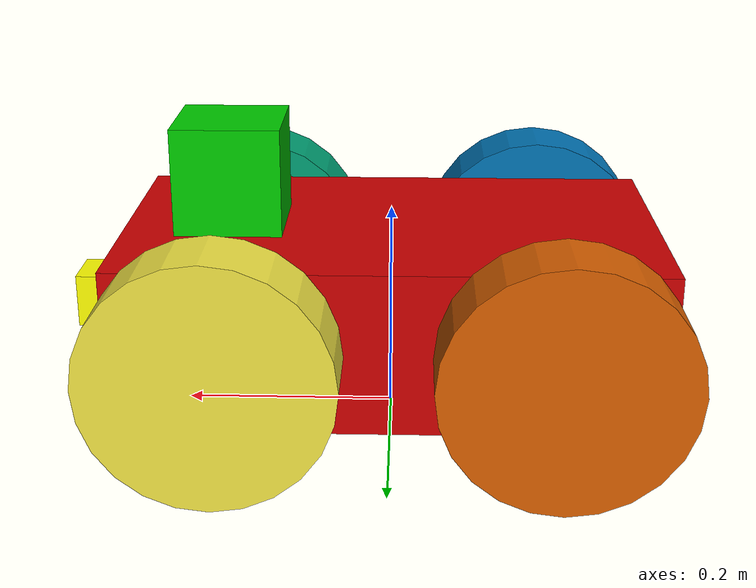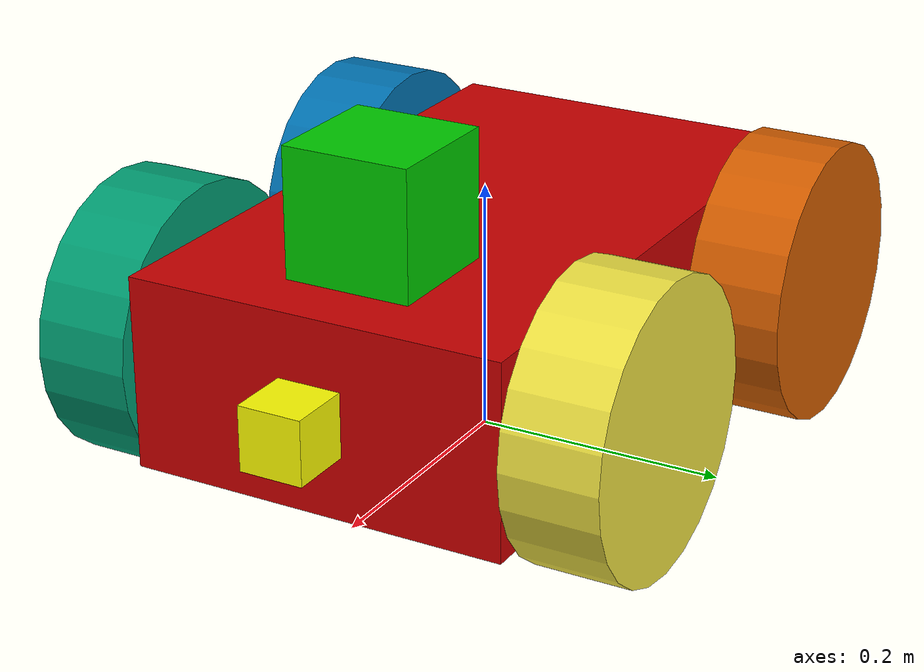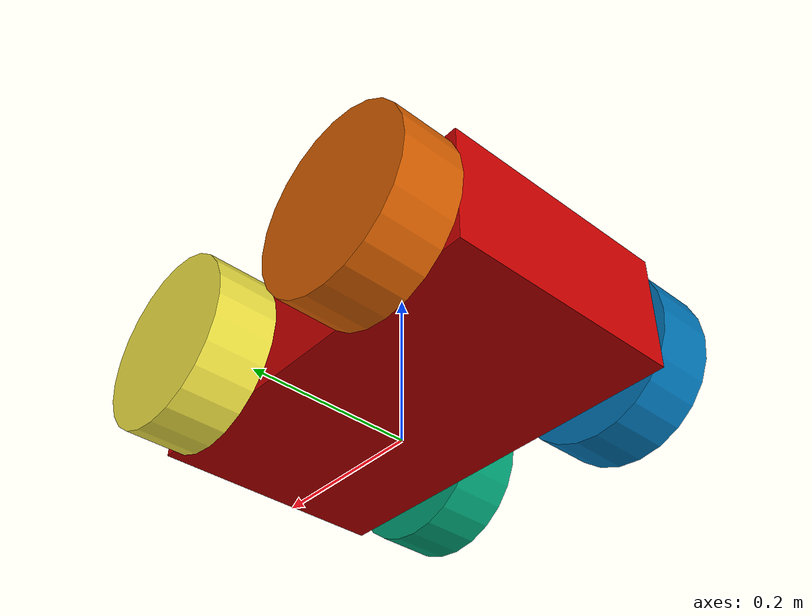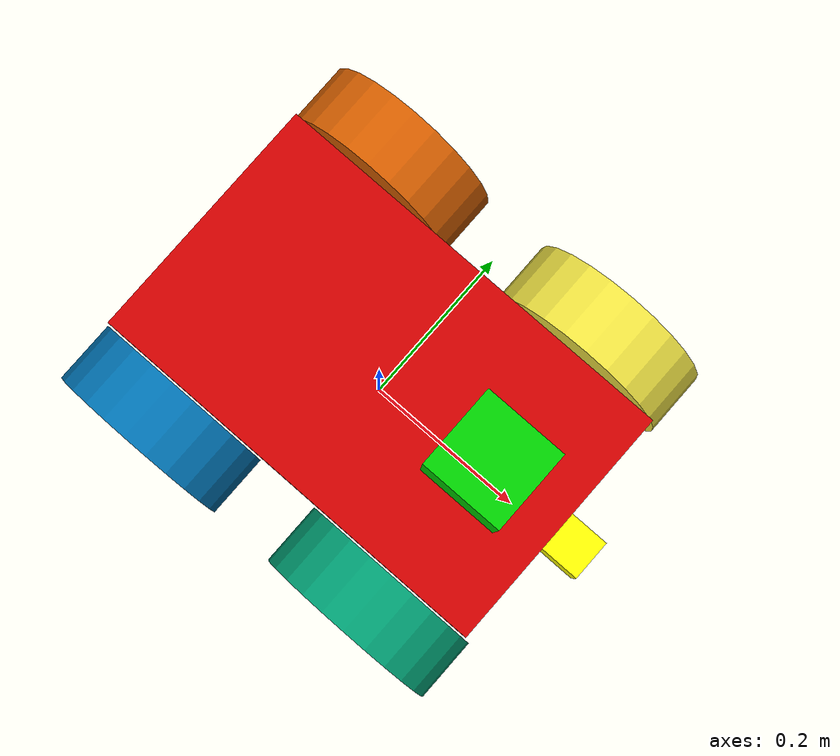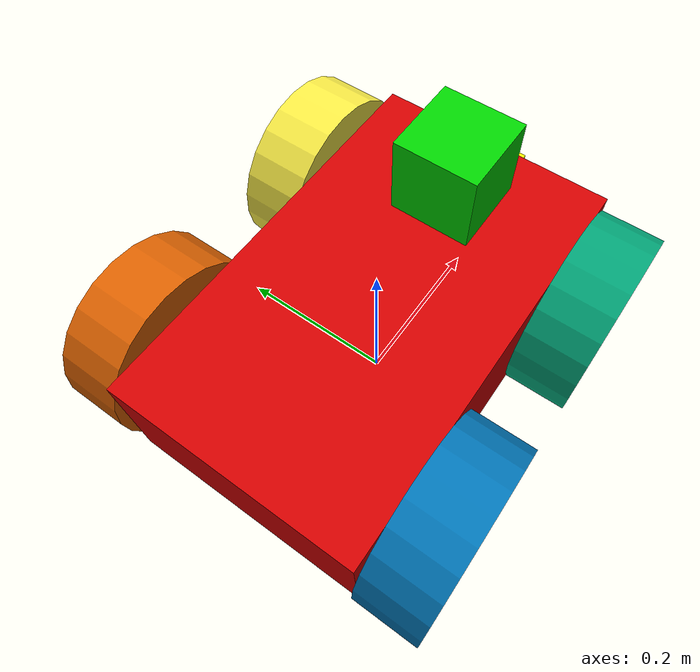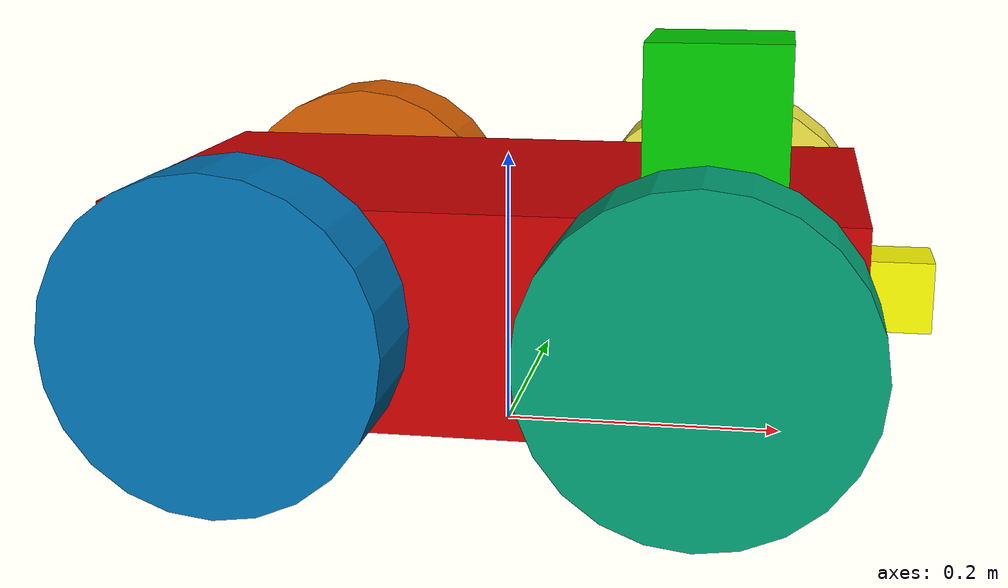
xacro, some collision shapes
<?xml version="1.0"?>

<robot name="noob_bot" xmlns:xacro="http://wiki.ros.org/xacro">

    <!-- Include the plugins -->
    <xacro:include filename="$(find noob_bot)/urdf/noob_bot.gazebo"/>

    <!-- Define wheel radius, length and mass. Also PI  -->
    <xacro:property name="wheel_r" value="0.111"/>
    <xacro:property name="wheel_h" value="0.075"/>
    <xacro:property name="wheel_m" value="1.0"/>
    <xacro:property name="M_PI" value="3.1415926535897931"/>

    <!-- Define robot base (body) mass, length, width and height -->
    <xacro:property name="base_m" value="15.0"/>
    <xacro:property name="base_x" value="0.5"/>
    <xacro:property name="base_y" value="0.3"/>
    <xacro:property name="base_z" value="0.15"/>

    <!-- Define camerea size -->
    <xacro:property name="camera_size" value="0.05"/>

    <!-- Define Offsets -->
    <xacro:property name="wheel_offset_x" value="0.14999"/>
    <!-- offset y = base_y/2 + wheel_h/2 + slight compensation-->
    <xacro:property name="wheel_offset_y" value="0.1900"/>
    <xacro:property name="wheel_offset_z" value="0.0"/>

    <!-- Define formula for moment of inertia of cylinder, can find on internet -->
    <xacro:macro name="inertia_cyl" params="m r h">
        <inertia ixx="${m*(3*r*r+h*h)/12}" ixy="0" ixz="0"
                 iyy="${m*r*r/2}" iyz="0"
                 izz="${m*(3*r*r+h*h)/12}"/>
    </xacro:macro>

    <!-- Moment of inertia of box -->
    <xacro:macro name="inertia_box" params="m x y z">
        <inertia ixx="${(y*y+z*z)*m/12}" ixy="0" ixz="0"
                 iyy="${(x*x+z*z)*m/12}" iyz="0"
                 izz="${(x*x+y*y)*m/12}"/>
    </xacro:macro>

    <!-- Number of joints = Number of links - 1 -->
    <link name="base_footprint">
        <visual>
            <origin xyz="0 0 0" rpy="0 0 0"/>
            <geometry>
                <box size="0.001 0.001 0.001"/>
            </geometry>
        </visual>
    </link>

    <joint name="base_footprint_joint" type="fixed">
        <origin xyz="0 0 ${wheel_r}" rpy="0 0 0" />
        <parent link="base_footprint"/>
        <child link="base_link"/>
    </joint>

    <!-- Every important link should have an inertial defined,
    this decide how well the bot moves in simulation-->
    <!--3 main part of a link,
        Inertial
        Visual
        Collision -->
    <link name="base_link">
        <inertial>
            <mass value="15.0"/>
            <origin xyz="0 0 0"/>
            <inertia ixx="0.140625" ixy="0" ixz="0"
                     iyy="0.340625" iyz="0"
                     izz="0.425"/>
        </inertial>
        <visual>
            <origin xyz="0 0 0" rpy="0 0 0"/>
            <geometry>
                <box size="0.5 0.3 0.15"/>
            </geometry>
            <material name="Red">
                <color rgba="0.8 0 0 1"/>
            </material>
        </visual>
        <collision>
            <origin xyz="0 0 0" rpy="0 0 0"/>
            <geometry>
                <box size="0.499 0.299 0.1499"/>
            </geometry>
        </collision>
    </link>
    <!-- Define Gazebo color -->
    <!-- The other material tag in Visual is only color in rviz -->
    <gazebo reference="base_link">
        <material value="Gazebo/Red"/>
    </gazebo>

    <!-- Define a macro to create wheels fast -->
    <xacro:macro name="noob_wheel" params="prefix parent *origin">
        <link name="${prefix}_wheel">
            <visual>
                <origin xyz="0 0 0" rpy="${M_PI/2} 0 0"/>
                <geometry>
                    <cylinder length="${wheel_h}" radius="${wheel_r}"/>
                </geometry>
            </visual>
            <collision>
                <origin xyz="0 0 0" rpy="${M_PI/2} 0 0"/>
                <geometry>
                    <cylinder length="${wheel_h}" radius="${wheel_r}"/>
                </geometry>
            </collision>
            <inertial>
                <mass value="${wheel_m}"/>
                <origin xyz="0 0 0"/>
                <xacro:inertia_cyl m="${wheel_m}" r="${wheel_r}" h="${wheel_h}"/>
            </inertial>
        </link>

        <!-- Joint should have all these tags -->
        <!-- Care the parent link, child link is usually the link with the same name -->
        <joint name="${prefix}_wheel_joint" type="continuous">
            <parent link="${parent}"/>
            <child link="${prefix}_wheel"/>
            <xacro:insert_block name="origin"/>
            <axis xyz="0 1 0" rpy="0 0 0"/>
            <limit effort="1000" velocity="1000"/>
            <joint_properties damping="1.0" friction="1.0"/>
        </joint>

        <gazebo reference="${prefix}_wheel">
            <mu1 value="1.0"/>
            <mu2 value="1.0"/>
            <kp value="1000000.0"/>
            <kd value="1.0"/>
            <maxVel value="1.0"/>
            <minDepth value="0.00"/>
            <material value="Gazebo/Black"/>
        </gazebo>
    </xacro:macro>

    <!-- Generate box, either for sensor or camera-->
    <xacro:macro name="box_gen" params="prefix use_stl *origin color colour box_size box_mass">
        <link name="${prefix}">
            <visual>
                <origin xyz="0 0 0" rpy="0 0 0"/>
                <geometry>
                    <xacro:if value="${use_stl}">
                        <mesh filename="package://noob_bot/meshes/hokuyo.dae"/>
                    </xacro:if>
                    <xacro:unless value="${use_stl}">
                        <box size="${box_size} ${box_size} ${box_size}"/>
                    </xacro:unless>
                </geometry>
                <material name="colour">
                    <color rgba="${colour}"/>
                </material>
            </visual>
            <collision>
                <origin xyz="0 0 0" rpy="0 0 0"/>
                <geometry>
                    <box size="${box_size} ${box_size} ${box_size}"/>
                </geometry>
            </collision>
            <inertial>
                <mass value="${box_mass}"/>
                <origin xyz="0 0 0" rpy="0 0 0"/>
                <xacro:inertia_box m="${box_mass}" x="${box_size}" y="${box_size}" z="${box_size}"/>
            </inertial>
        </link>
        <joint name="${prefix}_joint" type="fixed">
            <parent link="base_link"/>
            <child link="${prefix}"/>
            <xacro:insert_block name="origin"/>
            <axis xyz="0 1 0"/>
        </joint>
        <gazebo reference="${prefix}">
            <material value="Gazebo/${color}"/>
        </gazebo>
    </xacro:macro>

    <!-- Use the macro defined and generate all the links -->
    <xacro:noob_wheel prefix="front_right" parent="base_link">
        <origin xyz="${wheel_offset_x} -${wheel_offset_y} ${wheel_offset_z}" rpy="0 0 0" />
    </xacro:noob_wheel>

    <xacro:noob_wheel prefix="front_left" parent="base_link">
        <origin xyz="${wheel_offset_x} ${wheel_offset_y} ${wheel_offset_z}" rpy="0 0 0" />
    </xacro:noob_wheel>

    <xacro:noob_wheel prefix="back_right" parent="base_link">
        <origin xyz="-${wheel_offset_x} -${wheel_offset_y} ${wheel_offset_z}" rpy="0 0 0" />
    </xacro:noob_wheel>

    <xacro:noob_wheel prefix="back_left" parent="base_link">
        <origin xyz="-${wheel_offset_x} ${wheel_offset_y} ${wheel_offset_z}" rpy="0 0 0" />
    </xacro:noob_wheel>

    <xacro:box_gen prefix="camera" use_stl="false" color="Yellow" colour="1 1 0 1" box_size="0.05" box_mass="0.1">
        <origin xyz="0.276 0 0" rpy="0 0 0"/>
    </xacro:box_gen>

    <xacro:box_gen prefix="hokuyo" use_stl="true" color="Green" colour="0 0.8 0 1" box_size="0.1" box_mass="1e-5">
        <origin xyz="0.15 0 0.125" rpy="0 0 0"/>
    </xacro:box_gen>

</robot>
